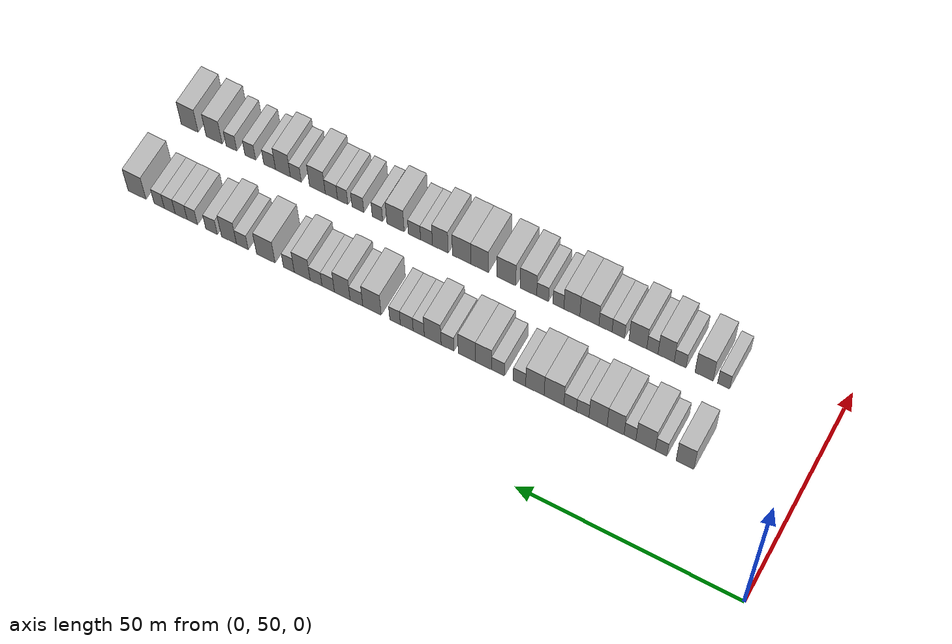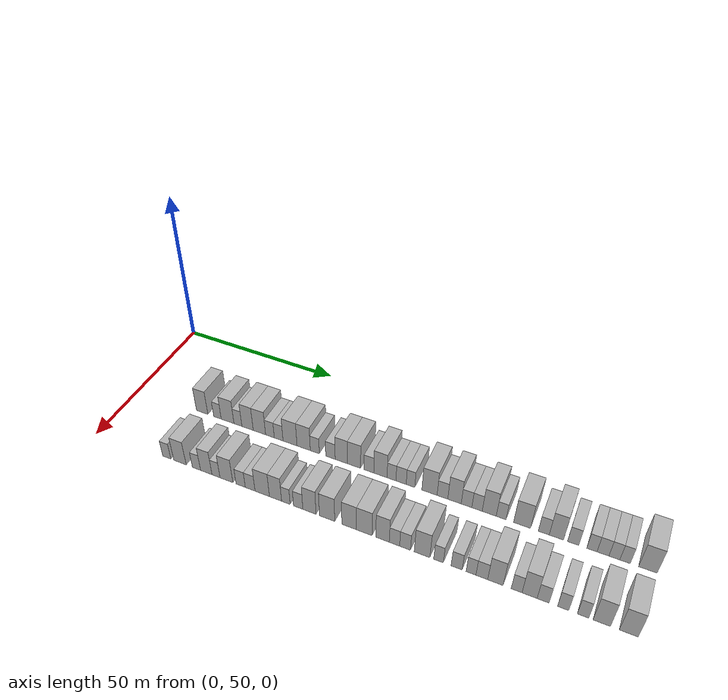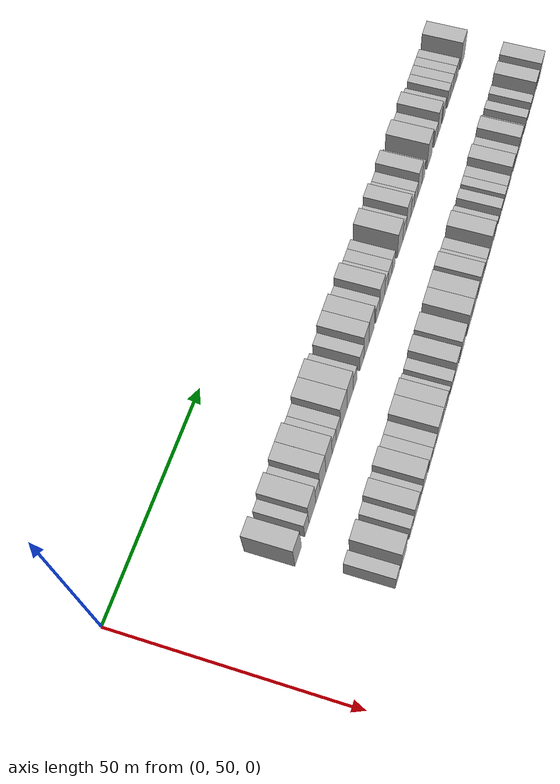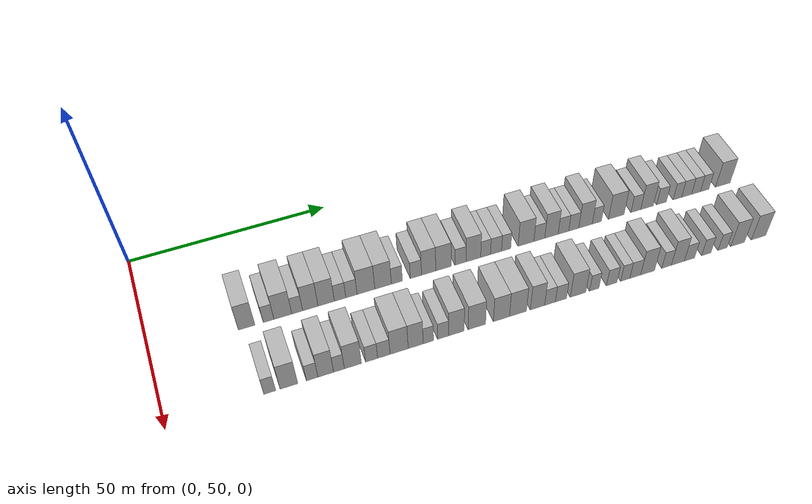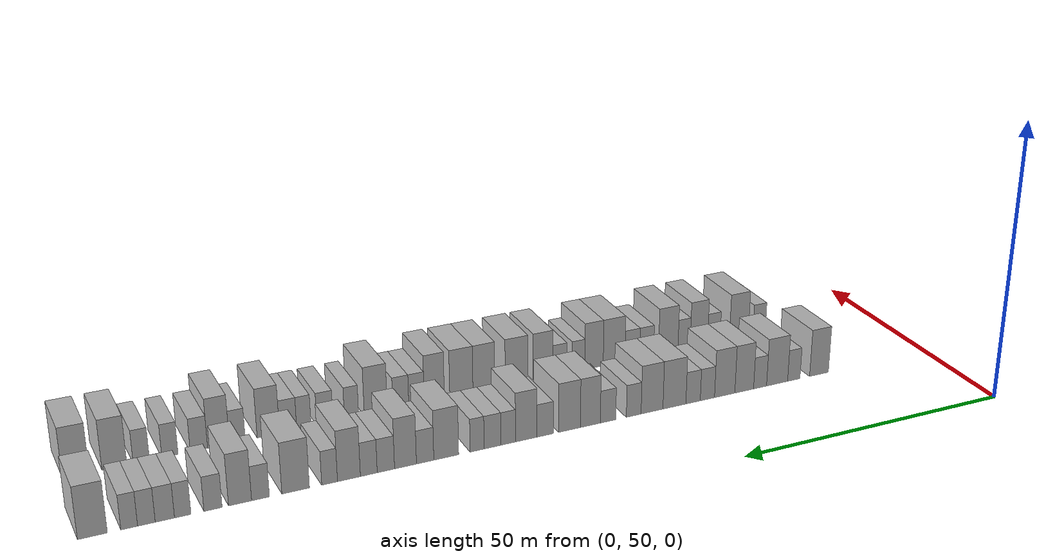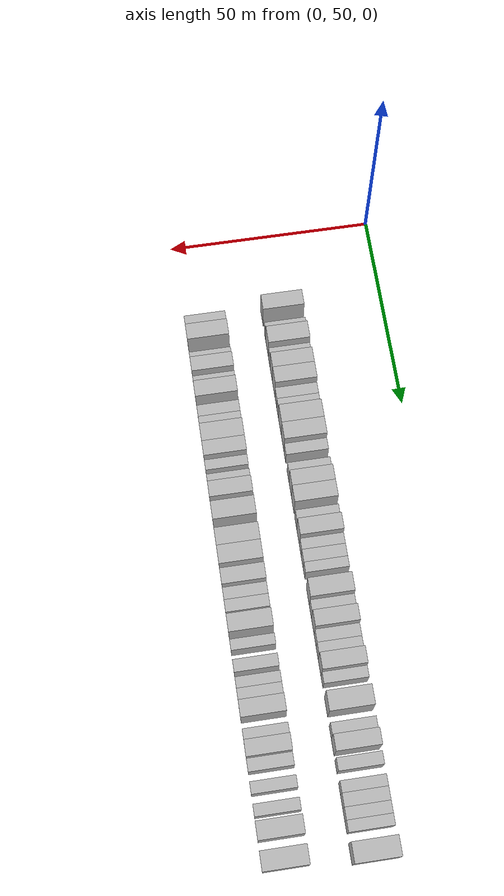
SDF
<sdf version="1.6">
 <world name="default">
  <model name="building_69">
   <static>1</static>
   <pose>25.0000 72.6796 0 0.000000 0.000000 0.000000</pose>
   <link name="link">
    <pose>0 0 4.50 0 0 0</pose>
    <collision name="collision"><geometry><box><size>10.0000 3.9369 9.0000</size></box></geometry></collision>
    <visual name="visual">
     <cast_shadows>0</cast_shadows>
     <geometry><box><size>10.0000 3.9369 9.0000</size></box></geometry>
     <material>
      <script>
       <uri>model://HANNAS_wall/materials/scripts</uri>
       <uri>model://HANNAS_wall/materials/textures</uri>
       <name>vrc/HANNAS_wall</name>
      </script>
     </material>
    </visual>
   </link>
  </model>
  <model name="building_70">
   <static>1</static>
   <pose>25.0000 77.9299 0 0.000000 0.000000 0.000000</pose>
   <link name="link">
    <pose>0 0 3.00 0 0 0</pose>
    <collision name="collision"><geometry><box><size>10.0000 2.5637 6.0000</size></box></geometry></collision>
    <visual name="visual">
     <cast_shadows>0</cast_shadows>
     <geometry><box><size>10.0000 2.5637 6.0000</size></box></geometry>
     <material>
      <script>
       <uri>model://HANNAS_wall/materials/scripts</uri>
       <uri>model://HANNAS_wall/materials/textures</uri>
       <name>vrc/HANNAS_wall</name>
      </script>
     </material>
    </visual>
   </link>
  </model>
  <model name="building_71">
   <static>1</static>
   <pose>25.0000 81.3707 0 0.000000 0.000000 0.000000</pose>
   <link name="link">
    <pose>0 0 4.50 0 0 0</pose>
    <collision name="collision"><geometry><box><size>10.0000 4.3179 9.0000</size></box></geometry></collision>
    <visual name="visual">
     <cast_shadows>0</cast_shadows>
     <geometry><box><size>10.0000 4.3179 9.0000</size></box></geometry>
     <material>
      <script>
       <uri>model://HANNAS_wall/materials/scripts</uri>
       <uri>model://HANNAS_wall/materials/textures</uri>
       <name>vrc/HANNAS_wall</name>
      </script>
     </material>
    </visual>
   </link>
  </model>
  <model name="building_72">
   <static>1</static>
   <pose>25.0000 84.8493 0 0.000000 0.000000 0.000000</pose>
   <link name="link">
    <pose>0 0 3.00 0 0 0</pose>
    <collision name="collision"><geometry><box><size>10.0000 2.6392 6.0000</size></box></geometry></collision>
    <visual name="visual">
     <cast_shadows>0</cast_shadows>
     <geometry><box><size>10.0000 2.6392 6.0000</size></box></geometry>
     <material>
      <script>
       <uri>model://HANNAS_wall/materials/scripts</uri>
       <uri>model://HANNAS_wall/materials/textures</uri>
       <name>vrc/HANNAS_wall</name>
      </script>
     </material>
    </visual>
   </link>
  </model>
  <model name="building_73">
   <static>1</static>
   <pose>25.0000 88.0581 0 0.000000 0.000000 0.000000</pose>
   <link name="link">
    <pose>0 0 4.50 0 0 0</pose>
    <collision name="collision"><geometry><box><size>10.0000 3.7784 9.0000</size></box></geometry></collision>
    <visual name="visual">
     <cast_shadows>0</cast_shadows>
     <geometry><box><size>10.0000 3.7784 9.0000</size></box></geometry>
     <material>
      <script>
       <uri>model://HANNAS_wall/materials/scripts</uri>
       <uri>model://HANNAS_wall/materials/textures</uri>
       <name>vrc/HANNAS_wall</name>
      </script>
     </material>
    </visual>
   </link>
  </model>
  <model name="building_74">
   <static>1</static>
   <pose>25.0000 91.9798 0 0.000000 0.000000 0.000000</pose>
   <link name="link">
    <pose>0 0 4.50 0 0 0</pose>
    <collision name="collision"><geometry><box><size>10.0000 4.0648 9.0000</size></box></geometry></collision>
    <visual name="visual">
     <cast_shadows>0</cast_shadows>
     <geometry><box><size>10.0000 4.0648 9.0000</size></box></geometry>
     <material>
      <script>
       <uri>model://HANNAS_wall/materials/scripts</uri>
       <uri>model://HANNAS_wall/materials/textures</uri>
       <name>vrc/HANNAS_wall</name>
      </script>
     </material>
    </visual>
   </link>
  </model>
  <model name="building_75">
   <static>1</static>
   <pose>25.0000 95.4207 0 0.000000 0.000000 0.000000</pose>
   <link name="link">
    <pose>0 0 3.00 0 0 0</pose>
    <collision name="collision"><geometry><box><size>10.0000 2.8171 6.0000</size></box></geometry></collision>
    <visual name="visual">
     <cast_shadows>0</cast_shadows>
     <geometry><box><size>10.0000 2.8171 6.0000</size></box></geometry>
     <material>
      <script>
       <uri>model://HANNAS_wall/materials/scripts</uri>
       <uri>model://HANNAS_wall/materials/textures</uri>
       <name>vrc/HANNAS_wall</name>
      </script>
     </material>
    </visual>
   </link>
  </model>
  <model name="building_76">
   <static>1</static>
   <pose>25.0000 98.2429 0 0.000000 0.000000 0.000000</pose>
   <link name="link">
    <pose>0 0 3.00 0 0 0</pose>
    <collision name="collision"><geometry><box><size>10.0000 2.8272 6.0000</size></box></geometry></collision>
    <visual name="visual">
     <cast_shadows>0</cast_shadows>
     <geometry><box><size>10.0000 2.8272 6.0000</size></box></geometry>
     <material>
      <script>
       <uri>model://HANNAS_wall/materials/scripts</uri>
       <uri>model://HANNAS_wall/materials/textures</uri>
       <name>vrc/HANNAS_wall</name>
      </script>
     </material>
    </visual>
   </link>
  </model>
  <model name="building_77">
   <static>1</static>
   <pose>25.0000 101.8892 0 0.000000 0.000000 0.000000</pose>
   <link name="link">
    <pose>0 0 4.50 0 0 0</pose>
    <collision name="collision"><geometry><box><size>10.0000 4.4654 9.0000</size></box></geometry></collision>
    <visual name="visual">
     <cast_shadows>0</cast_shadows>
     <geometry><box><size>10.0000 4.4654 9.0000</size></box></geometry>
     <material>
      <script>
       <uri>model://HANNAS_wall/materials/scripts</uri>
       <uri>model://HANNAS_wall/materials/textures</uri>
       <name>vrc/HANNAS_wall</name>
      </script>
     </material>
    </visual>
   </link>
  </model>
  <model name="building_78">
   <static>1</static>
   <pose>25.0000 106.2235 0 0.000000 0.000000 0.000000</pose>
   <link name="link">
    <pose>0 0 4.50 0 0 0</pose>
    <collision name="collision"><geometry><box><size>10.0000 4.2032 9.0000</size></box></geometry></collision>
    <visual name="visual">
     <cast_shadows>0</cast_shadows>
     <geometry><box><size>10.0000 4.2032 9.0000</size></box></geometry>
     <material>
      <script>
       <uri>model://HANNAS_wall/materials/scripts</uri>
       <uri>model://HANNAS_wall/materials/textures</uri>
       <name>vrc/HANNAS_wall</name>
      </script>
     </material>
    </visual>
   </link>
  </model>
  <model name="building_79">
   <static>1</static>
   <pose>25.0000 109.7305 0 0.000000 0.000000 0.000000</pose>
   <link name="link">
    <pose>0 0 3.00 0 0 0</pose>
    <collision name="collision"><geometry><box><size>10.0000 2.8109 6.0000</size></box></geometry></collision>
    <visual name="visual">
     <cast_shadows>0</cast_shadows>
     <geometry><box><size>10.0000 2.8109 6.0000</size></box></geometry>
     <material>
      <script>
       <uri>model://HANNAS_wall/materials/scripts</uri>
       <uri>model://HANNAS_wall/materials/textures</uri>
       <name>vrc/HANNAS_wall</name>
      </script>
     </material>
    </visual>
   </link>
  </model>
  <model name="building_80">
   <static>1</static>
   <pose>25.0000 114.5892 0 0.000000 0.000000 0.000000</pose>
   <link name="link">
    <pose>0 0 3.00 0 0 0</pose>
    <collision name="collision"><geometry><box><size>10.0000 2.9066 6.0000</size></box></geometry></collision>
    <visual name="visual">
     <cast_shadows>0</cast_shadows>
     <geometry><box><size>10.0000 2.9066 6.0000</size></box></geometry>
     <material>
      <script>
       <uri>model://HANNAS_wall/materials/scripts</uri>
       <uri>model://HANNAS_wall/materials/textures</uri>
       <name>vrc/HANNAS_wall</name>
      </script>
     </material>
    </visual>
   </link>
  </model>
  <model name="building_81">
   <static>1</static>
   <pose>25.0000 117.9001 0 0.000000 0.000000 0.000000</pose>
   <link name="link">
    <pose>0 0 4.50 0 0 0</pose>
    <collision name="collision"><geometry><box><size>10.0000 3.7151 9.0000</size></box></geometry></collision>
    <visual name="visual">
     <cast_shadows>0</cast_shadows>
     <geometry><box><size>10.0000 3.7151 9.0000</size></box></geometry>
     <material>
      <script>
       <uri>model://HANNAS_wall/materials/scripts</uri>
       <uri>model://HANNAS_wall/materials/textures</uri>
       <name>vrc/HANNAS_wall</name>
      </script>
     </material>
    </visual>
   </link>
  </model>
  <model name="building_82">
   <static>1</static>
   <pose>25.0000 121.7579 0 0.000000 0.000000 0.000000</pose>
   <link name="link">
    <pose>0 0 4.50 0 0 0</pose>
    <collision name="collision"><geometry><box><size>10.0000 4.0005 9.0000</size></box></geometry></collision>
    <visual name="visual">
     <cast_shadows>0</cast_shadows>
     <geometry><box><size>10.0000 4.0005 9.0000</size></box></geometry>
     <material>
      <script>
       <uri>model://HANNAS_wall/materials/scripts</uri>
       <uri>model://HANNAS_wall/materials/textures</uri>
       <name>vrc/HANNAS_wall</name>
      </script>
     </material>
    </visual>
   </link>
  </model>
  <model name="building_83">
   <static>1</static>
   <pose>25.0000 126.2289 0 0.000000 0.000000 0.000000</pose>
   <link name="link">
    <pose>0 0 3.00 0 0 0</pose>
    <collision name="collision"><geometry><box><size>10.0000 2.9415 6.0000</size></box></geometry></collision>
    <visual name="visual">
     <cast_shadows>0</cast_shadows>
     <geometry><box><size>10.0000 2.9415 6.0000</size></box></geometry>
     <material>
      <script>
       <uri>model://HANNAS_wall/materials/scripts</uri>
       <uri>model://HANNAS_wall/materials/textures</uri>
       <name>vrc/HANNAS_wall</name>
      </script>
     </material>
    </visual>
   </link>
  </model>
  <model name="building_84">
   <static>1</static>
   <pose>25.0000 129.6538 0 0.000000 0.000000 0.000000</pose>
   <link name="link">
    <pose>0 0 4.50 0 0 0</pose>
    <collision name="collision"><geometry><box><size>10.0000 3.9083 9.0000</size></box></geometry></collision>
    <visual name="visual">
     <cast_shadows>0</cast_shadows>
     <geometry><box><size>10.0000 3.9083 9.0000</size></box></geometry>
     <material>
      <script>
       <uri>model://HANNAS_wall/materials/scripts</uri>
       <uri>model://HANNAS_wall/materials/textures</uri>
       <name>vrc/HANNAS_wall</name>
      </script>
     </material>
    </visual>
   </link>
  </model>
  <model name="building_85">
   <static>1</static>
   <pose>25.0000 132.9072 0 0.000000 0.000000 0.000000</pose>
   <link name="link">
    <pose>0 0 3.00 0 0 0</pose>
    <collision name="collision"><geometry><box><size>10.0000 2.5983 6.0000</size></box></geometry></collision>
    <visual name="visual">
     <cast_shadows>0</cast_shadows>
     <geometry><box><size>10.0000 2.5983 6.0000</size></box></geometry>
     <material>
      <script>
       <uri>model://HANNAS_wall/materials/scripts</uri>
       <uri>model://HANNAS_wall/materials/textures</uri>
       <name>vrc/HANNAS_wall</name>
      </script>
     </material>
    </visual>
   </link>
  </model>
  <model name="building_86">
   <static>1</static>
   <pose>25.0000 135.7008 0 0.000000 0.000000 0.000000</pose>
   <link name="link">
    <pose>0 0 3.00 0 0 0</pose>
    <collision name="collision"><geometry><box><size>10.0000 2.9889 6.0000</size></box></geometry></collision>
    <visual name="visual">
     <cast_shadows>0</cast_shadows>
     <geometry><box><size>10.0000 2.9889 6.0000</size></box></geometry>
     <material>
      <script>
       <uri>model://HANNAS_wall/materials/scripts</uri>
       <uri>model://HANNAS_wall/materials/textures</uri>
       <name>vrc/HANNAS_wall</name>
      </script>
     </material>
    </visual>
   </link>
  </model>
  <model name="building_87">
   <static>1</static>
   <pose>25.0000 138.4334 0 0.000000 0.000000 0.000000</pose>
   <link name="link">
    <pose>0 0 3.00 0 0 0</pose>
    <collision name="collision"><geometry><box><size>10.0000 2.4765 6.0000</size></box></geometry></collision>
    <visual name="visual">
     <cast_shadows>0</cast_shadows>
     <geometry><box><size>10.0000 2.4765 6.0000</size></box></geometry>
     <material>
      <script>
       <uri>model://HANNAS_wall/materials/scripts</uri>
       <uri>model://HANNAS_wall/materials/textures</uri>
       <name>vrc/HANNAS_wall</name>
      </script>
     </material>
    </visual>
   </link>
  </model>
  <model name="building_88">
   <static>1</static>
   <pose>25.0000 143.8302 0 0.000000 0.000000 0.000000</pose>
   <link name="link">
    <pose>0 0 4.50 0 0 0</pose>
    <collision name="collision"><geometry><box><size>10.0000 4.3169 9.0000</size></box></geometry></collision>
    <visual name="visual">
     <cast_shadows>0</cast_shadows>
     <geometry><box><size>10.0000 4.3169 9.0000</size></box></geometry>
     <material>
      <script>
       <uri>model://HANNAS_wall/materials/scripts</uri>
       <uri>model://HANNAS_wall/materials/textures</uri>
       <name>vrc/HANNAS_wall</name>
      </script>
     </material>
    </visual>
   </link>
  </model>
  <model name="building_89">
   <static>1</static>
   <pose>25.0000 147.4810 0 0.000000 0.000000 0.000000</pose>
   <link name="link">
    <pose>0 0 3.00 0 0 0</pose>
    <collision name="collision"><geometry><box><size>10.0000 2.9848 6.0000</size></box></geometry></collision>
    <visual name="visual">
     <cast_shadows>0</cast_shadows>
     <geometry><box><size>10.0000 2.9848 6.0000</size></box></geometry>
     <material>
      <script>
       <uri>model://HANNAS_wall/materials/scripts</uri>
       <uri>model://HANNAS_wall/materials/textures</uri>
       <name>vrc/HANNAS_wall</name>
      </script>
     </material>
    </visual>
   </link>
  </model>
  <model name="building_90">
   <static>1</static>
   <pose>25.0000 150.8364 0 0.000000 0.000000 0.000000</pose>
   <link name="link">
    <pose>0 0 4.50 0 0 0</pose>
    <collision name="collision"><geometry><box><size>10.0000 3.7260 9.0000</size></box></geometry></collision>
    <visual name="visual">
     <cast_shadows>0</cast_shadows>
     <geometry><box><size>10.0000 3.7260 9.0000</size></box></geometry>
     <material>
      <script>
       <uri>model://HANNAS_wall/materials/scripts</uri>
       <uri>model://HANNAS_wall/materials/textures</uri>
       <name>vrc/HANNAS_wall</name>
      </script>
     </material>
    </visual>
   </link>
  </model>
  <model name="building_91">
   <static>1</static>
   <pose>25.0000 154.1645 0 0.000000 0.000000 0.000000</pose>
   <link name="link">
    <pose>0 0 3.00 0 0 0</pose>
    <collision name="collision"><geometry><box><size>10.0000 2.9302 6.0000</size></box></geometry></collision>
    <visual name="visual">
     <cast_shadows>0</cast_shadows>
     <geometry><box><size>10.0000 2.9302 6.0000</size></box></geometry>
     <material>
      <script>
       <uri>model://HANNAS_wall/materials/scripts</uri>
       <uri>model://HANNAS_wall/materials/textures</uri>
       <name>vrc/HANNAS_wall</name>
      </script>
     </material>
    </visual>
   </link>
  </model>
  <model name="building_92">
   <static>1</static>
   <pose>25.0000 157.0354 0 0.000000 0.000000 0.000000</pose>
   <link name="link">
    <pose>0 0 3.00 0 0 0</pose>
    <collision name="collision"><geometry><box><size>10.0000 2.8117 6.0000</size></box></geometry></collision>
    <visual name="visual">
     <cast_shadows>0</cast_shadows>
     <geometry><box><size>10.0000 2.8117 6.0000</size></box></geometry>
     <material>
      <script>
       <uri>model://HANNAS_wall/materials/scripts</uri>
       <uri>model://HANNAS_wall/materials/textures</uri>
       <name>vrc/HANNAS_wall</name>
      </script>
     </material>
    </visual>
   </link>
  </model>
  <model name="building_93">
   <static>1</static>
   <pose>25.0000 160.3373 0 0.000000 0.000000 0.000000</pose>
   <link name="link">
    <pose>0 0 4.50 0 0 0</pose>
    <collision name="collision"><geometry><box><size>10.0000 3.7919 9.0000</size></box></geometry></collision>
    <visual name="visual">
     <cast_shadows>0</cast_shadows>
     <geometry><box><size>10.0000 3.7919 9.0000</size></box></geometry>
     <material>
      <script>
       <uri>model://HANNAS_wall/materials/scripts</uri>
       <uri>model://HANNAS_wall/materials/textures</uri>
       <name>vrc/HANNAS_wall</name>
      </script>
     </material>
    </visual>
   </link>
  </model>
  <model name="building_94">
   <static>1</static>
   <pose>25.0000 163.5310 0 0.000000 0.000000 0.000000</pose>
   <link name="link">
    <pose>0 0 3.00 0 0 0</pose>
    <collision name="collision"><geometry><box><size>10.0000 2.5955 6.0000</size></box></geometry></collision>
    <visual name="visual">
     <cast_shadows>0</cast_shadows>
     <geometry><box><size>10.0000 2.5955 6.0000</size></box></geometry>
     <material>
      <script>
       <uri>model://HANNAS_wall/materials/scripts</uri>
       <uri>model://HANNAS_wall/materials/textures</uri>
       <name>vrc/HANNAS_wall</name>
      </script>
     </material>
    </visual>
   </link>
  </model>
  <model name="building_95">
   <static>1</static>
   <pose>25.0000 169.0594 0 0.000000 0.000000 0.000000</pose>
   <link name="link">
    <pose>0 0 4.50 0 0 0</pose>
    <collision name="collision"><geometry><box><size>10.0000 4.4613 9.0000</size></box></geometry></collision>
    <visual name="visual">
     <cast_shadows>0</cast_shadows>
     <geometry><box><size>10.0000 4.4613 9.0000</size></box></geometry>
     <material>
      <script>
       <uri>model://HANNAS_wall/materials/scripts</uri>
       <uri>model://HANNAS_wall/materials/textures</uri>
       <name>vrc/HANNAS_wall</name>
      </script>
     </material>
    </visual>
   </link>
  </model>
  <model name="building_96">
   <static>1</static>
   <pose>25.0000 174.7041 0 0.000000 0.000000 0.000000</pose>
   <link name="link">
    <pose>0 0 3.00 0 0 0</pose>
    <collision name="collision"><geometry><box><size>10.0000 2.8280 6.0000</size></box></geometry></collision>
    <visual name="visual">
     <cast_shadows>0</cast_shadows>
     <geometry><box><size>10.0000 2.8280 6.0000</size></box></geometry>
     <material>
      <script>
       <uri>model://HANNAS_wall/materials/scripts</uri>
       <uri>model://HANNAS_wall/materials/textures</uri>
       <name>vrc/HANNAS_wall</name>
      </script>
     </material>
    </visual>
   </link>
  </model>
  <model name="building_97">
   <static>1</static>
   <pose>25.0000 177.9384 0 0.000000 0.000000 0.000000</pose>
   <link name="link">
    <pose>0 0 4.50 0 0 0</pose>
    <collision name="collision"><geometry><box><size>10.0000 3.6406 9.0000</size></box></geometry></collision>
    <visual name="visual">
     <cast_shadows>0</cast_shadows>
     <geometry><box><size>10.0000 3.6406 9.0000</size></box></geometry>
     <material>
      <script>
       <uri>model://HANNAS_wall/materials/scripts</uri>
       <uri>model://HANNAS_wall/materials/textures</uri>
       <name>vrc/HANNAS_wall</name>
      </script>
     </material>
    </visual>
   </link>
  </model>
  <model name="building_98">
   <static>1</static>
   <pose>25.0000 182.1756 0 0.000000 0.000000 0.000000</pose>
   <link name="link">
    <pose>0 0 3.00 0 0 0</pose>
    <collision name="collision"><geometry><box><size>10.0000 2.8338 6.0000</size></box></geometry></collision>
    <visual name="visual">
     <cast_shadows>0</cast_shadows>
     <geometry><box><size>10.0000 2.8338 6.0000</size></box></geometry>
     <material>
      <script>
       <uri>model://HANNAS_wall/materials/scripts</uri>
       <uri>model://HANNAS_wall/materials/textures</uri>
       <name>vrc/HANNAS_wall</name>
      </script>
     </material>
    </visual>
   </link>
  </model>
  <model name="building_99">
   <static>1</static>
   <pose>25.0000 186.8562 0 0.000000 0.000000 0.000000</pose>
   <link name="link">
    <pose>0 0 3.00 0 0 0</pose>
    <collision name="collision"><geometry><box><size>10.0000 2.5273 6.0000</size></box></geometry></collision>
    <visual name="visual">
     <cast_shadows>0</cast_shadows>
     <geometry><box><size>10.0000 2.5273 6.0000</size></box></geometry>
     <material>
      <script>
       <uri>model://HANNAS_wall/materials/scripts</uri>
       <uri>model://HANNAS_wall/materials/textures</uri>
       <name>vrc/HANNAS_wall</name>
      </script>
     </material>
    </visual>
   </link>
  </model>
  <model name="building_100">
   <static>1</static>
   <pose>25.0000 189.5868 0 0.000000 0.000000 0.000000</pose>
   <link name="link">
    <pose>0 0 3.00 0 0 0</pose>
    <collision name="collision"><geometry><box><size>10.0000 2.9339 6.0000</size></box></geometry></collision>
    <visual name="visual">
     <cast_shadows>0</cast_shadows>
     <geometry><box><size>10.0000 2.9339 6.0000</size></box></geometry>
     <material>
      <script>
       <uri>model://HANNAS_wall/materials/scripts</uri>
       <uri>model://HANNAS_wall/materials/textures</uri>
       <name>vrc/HANNAS_wall</name>
      </script>
     </material>
    </visual>
   </link>
  </model>
  <model name="building_101">
   <static>1</static>
   <pose>25.0000 192.3838 0 0.000000 0.000000 0.000000</pose>
   <link name="link">
    <pose>0 0 3.00 0 0 0</pose>
    <collision name="collision"><geometry><box><size>10.0000 2.6603 6.0000</size></box></geometry></collision>
    <visual name="visual">
     <cast_shadows>0</cast_shadows>
     <geometry><box><size>10.0000 2.6603 6.0000</size></box></geometry>
     <material>
      <script>
       <uri>model://HANNAS_wall/materials/scripts</uri>
       <uri>model://HANNAS_wall/materials/textures</uri>
       <name>vrc/HANNAS_wall</name>
      </script>
     </material>
    </visual>
   </link>
  </model>
  <model name="building_102">
   <static>1</static>
   <pose>25.0000 194.9754 0 0.000000 0.000000 0.000000</pose>
   <link name="link">
    <pose>0 0 3.00 0 0 0</pose>
    <collision name="collision"><geometry><box><size>10.0000 2.5228 6.0000</size></box></geometry></collision>
    <visual name="visual">
     <cast_shadows>0</cast_shadows>
     <geometry><box><size>10.0000 2.5228 6.0000</size></box></geometry>
     <material>
      <script>
       <uri>model://HANNAS_wall/materials/scripts</uri>
       <uri>model://HANNAS_wall/materials/textures</uri>
       <name>vrc/HANNAS_wall</name>
      </script>
     </material>
    </visual>
   </link>
  </model>
  <model name="building_103">
   <static>1</static>
   <pose>25.0000 200.4454 0 0.000000 0.000000 0.000000</pose>
   <link name="link">
    <pose>0 0 4.50 0 0 0</pose>
    <collision name="collision"><geometry><box><size>10.0000 4.4171 9.0000</size></box></geometry></collision>
    <visual name="visual">
     <cast_shadows>0</cast_shadows>
     <geometry><box><size>10.0000 4.4171 9.0000</size></box></geometry>
     <material>
      <script>
       <uri>model://HANNAS_wall/materials/scripts</uri>
       <uri>model://HANNAS_wall/materials/textures</uri>
       <name>vrc/HANNAS_wall</name>
      </script>
     </material>
    </visual>
   </link>
  </model>
  <model name="building_169">
   <static>1</static>
   <pose>44.0000 73.4315 0 0.000000 0.000000 0.000000</pose>
   <link name="link">
    <pose>0 0 3.00 0 0 0</pose>
    <collision name="collision"><geometry><box><size>10.0000 2.6902 6.0000</size></box></geometry></collision>
    <visual name="visual">
     <cast_shadows>0</cast_shadows>
     <geometry><box><size>10.0000 2.6902 6.0000</size></box></geometry>
     <material>
      <script>
       <uri>model://HANNAS_wall/materials/scripts</uri>
       <uri>model://HANNAS_wall/materials/textures</uri>
       <name>vrc/HANNAS_wall</name>
      </script>
     </material>
    </visual>
   </link>
  </model>
  <model name="building_170">
   <static>1</static>
   <pose>44.0000 77.8051 0 0.000000 0.000000 0.000000</pose>
   <link name="link">
    <pose>0 0 4.50 0 0 0</pose>
    <collision name="collision"><geometry><box><size>10.0000 4.0569 9.0000</size></box></geometry></collision>
    <visual name="visual">
     <cast_shadows>0</cast_shadows>
     <geometry><box><size>10.0000 4.0569 9.0000</size></box></geometry>
     <material>
      <script>
       <uri>model://HANNAS_wall/materials/scripts</uri>
       <uri>model://HANNAS_wall/materials/textures</uri>
       <name>vrc/HANNAS_wall</name>
      </script>
     </material>
    </visual>
   </link>
  </model>
  <model name="building_171">
   <static>1</static>
   <pose>44.0000 83.1615 0 0.000000 0.000000 0.000000</pose>
   <link name="link">
    <pose>0 0 3.00 0 0 0</pose>
    <collision name="collision"><geometry><box><size>10.0000 2.6559 6.0000</size></box></geometry></collision>
    <visual name="visual">
     <cast_shadows>0</cast_shadows>
     <geometry><box><size>10.0000 2.6559 6.0000</size></box></geometry>
     <material>
      <script>
       <uri>model://HANNAS_wall/materials/scripts</uri>
       <uri>model://HANNAS_wall/materials/textures</uri>
       <name>vrc/HANNAS_wall</name>
      </script>
     </material>
    </visual>
   </link>
  </model>
  <model name="building_172">
   <static>1</static>
   <pose>44.0000 86.3256 0 0.000000 0.000000 0.000000</pose>
   <link name="link">
    <pose>0 0 4.50 0 0 0</pose>
    <collision name="collision"><geometry><box><size>10.0000 3.6723 9.0000</size></box></geometry></collision>
    <visual name="visual">
     <cast_shadows>0</cast_shadows>
     <geometry><box><size>10.0000 3.6723 9.0000</size></box></geometry>
     <material>
      <script>
       <uri>model://HANNAS_wall/materials/scripts</uri>
       <uri>model://HANNAS_wall/materials/textures</uri>
       <name>vrc/HANNAS_wall</name>
      </script>
     </material>
    </visual>
   </link>
  </model>
  <model name="building_173">
   <static>1</static>
   <pose>44.0000 89.4273 0 0.000000 0.000000 0.000000</pose>
   <link name="link">
    <pose>0 0 3.00 0 0 0</pose>
    <collision name="collision"><geometry><box><size>10.0000 2.5310 6.0000</size></box></geometry></collision>
    <visual name="visual">
     <cast_shadows>0</cast_shadows>
     <geometry><box><size>10.0000 2.5310 6.0000</size></box></geometry>
     <material>
      <script>
       <uri>model://HANNAS_wall/materials/scripts</uri>
       <uri>model://HANNAS_wall/materials/textures</uri>
       <name>vrc/HANNAS_wall</name>
      </script>
     </material>
    </visual>
   </link>
  </model>
  <model name="building_174">
   <static>1</static>
   <pose>44.0000 92.7129 0 0.000000 0.000000 0.000000</pose>
   <link name="link">
    <pose>0 0 4.50 0 0 0</pose>
    <collision name="collision"><geometry><box><size>10.0000 4.0401 9.0000</size></box></geometry></collision>
    <visual name="visual">
     <cast_shadows>0</cast_shadows>
     <geometry><box><size>10.0000 4.0401 9.0000</size></box></geometry>
     <material>
      <script>
       <uri>model://HANNAS_wall/materials/scripts</uri>
       <uri>model://HANNAS_wall/materials/textures</uri>
       <name>vrc/HANNAS_wall</name>
      </script>
     </material>
    </visual>
   </link>
  </model>
  <model name="building_175">
   <static>1</static>
   <pose>44.0000 97.1640 0 0.000000 0.000000 0.000000</pose>
   <link name="link">
    <pose>0 0 3.00 0 0 0</pose>
    <collision name="collision"><geometry><box><size>10.0000 2.8620 6.0000</size></box></geometry></collision>
    <visual name="visual">
     <cast_shadows>0</cast_shadows>
     <geometry><box><size>10.0000 2.8620 6.0000</size></box></geometry>
     <material>
      <script>
       <uri>model://HANNAS_wall/materials/scripts</uri>
       <uri>model://HANNAS_wall/materials/textures</uri>
       <name>vrc/HANNAS_wall</name>
      </script>
     </material>
    </visual>
   </link>
  </model>
  <model name="building_176">
   <static>1</static>
   <pose>44.0000 100.0916 0 0.000000 0.000000 0.000000</pose>
   <link name="link">
    <pose>0 0 3.00 0 0 0</pose>
    <collision name="collision"><geometry><box><size>10.0000 2.9933 6.0000</size></box></geometry></collision>
    <visual name="visual">
     <cast_shadows>0</cast_shadows>
     <geometry><box><size>10.0000 2.9933 6.0000</size></box></geometry>
     <material>
      <script>
       <uri>model://HANNAS_wall/materials/scripts</uri>
       <uri>model://HANNAS_wall/materials/textures</uri>
       <name>vrc/HANNAS_wall</name>
      </script>
     </material>
    </visual>
   </link>
  </model>
  <model name="building_177">
   <static>1</static>
   <pose>44.0000 103.7774 0 0.000000 0.000000 0.000000</pose>
   <link name="link">
    <pose>0 0 4.50 0 0 0</pose>
    <collision name="collision"><geometry><box><size>10.0000 4.3782 9.0000</size></box></geometry></collision>
    <visual name="visual">
     <cast_shadows>0</cast_shadows>
     <geometry><box><size>10.0000 4.3782 9.0000</size></box></geometry>
     <material>
      <script>
       <uri>model://HANNAS_wall/materials/scripts</uri>
       <uri>model://HANNAS_wall/materials/textures</uri>
       <name>vrc/HANNAS_wall</name>
      </script>
     </material>
    </visual>
   </link>
  </model>
  <model name="building_178">
   <static>1</static>
   <pose>44.0000 107.7980 0 0.000000 0.000000 0.000000</pose>
   <link name="link">
    <pose>0 0 4.50 0 0 0</pose>
    <collision name="collision"><geometry><box><size>10.0000 3.6632 9.0000</size></box></geometry></collision>
    <visual name="visual">
     <cast_shadows>0</cast_shadows>
     <geometry><box><size>10.0000 3.6632 9.0000</size></box></geometry>
     <material>
      <script>
       <uri>model://HANNAS_wall/materials/scripts</uri>
       <uri>model://HANNAS_wall/materials/textures</uri>
       <name>vrc/HANNAS_wall</name>
      </script>
     </material>
    </visual>
   </link>
  </model>
  <model name="building_179">
   <static>1</static>
   <pose>44.0000 110.8971 0 0.000000 0.000000 0.000000</pose>
   <link name="link">
    <pose>0 0 3.00 0 0 0</pose>
    <collision name="collision"><geometry><box><size>10.0000 2.5349 6.0000</size></box></geometry></collision>
    <visual name="visual">
     <cast_shadows>0</cast_shadows>
     <geometry><box><size>10.0000 2.5349 6.0000</size></box></geometry>
     <material>
      <script>
       <uri>model://HANNAS_wall/materials/scripts</uri>
       <uri>model://HANNAS_wall/materials/textures</uri>
       <name>vrc/HANNAS_wall</name>
      </script>
     </material>
    </visual>
   </link>
  </model>
  <model name="building_180">
   <static>1</static>
   <pose>44.0000 114.5311 0 0.000000 0.000000 0.000000</pose>
   <link name="link">
    <pose>0 0 3.00 0 0 0</pose>
    <collision name="collision"><geometry><box><size>10.0000 2.7332 6.0000</size></box></geometry></collision>
    <visual name="visual">
     <cast_shadows>0</cast_shadows>
     <geometry><box><size>10.0000 2.7332 6.0000</size></box></geometry>
     <material>
      <script>
       <uri>model://HANNAS_wall/materials/scripts</uri>
       <uri>model://HANNAS_wall/materials/textures</uri>
       <name>vrc/HANNAS_wall</name>
      </script>
     </material>
    </visual>
   </link>
  </model>
  <model name="building_181">
   <static>1</static>
   <pose>44.0000 117.8230 0 0.000000 0.000000 0.000000</pose>
   <link name="link">
    <pose>0 0 4.50 0 0 0</pose>
    <collision name="collision"><geometry><box><size>10.0000 3.8507 9.0000</size></box></geometry></collision>
    <visual name="visual">
     <cast_shadows>0</cast_shadows>
     <geometry><box><size>10.0000 3.8507 9.0000</size></box></geometry>
     <material>
      <script>
       <uri>model://HANNAS_wall/materials/scripts</uri>
       <uri>model://HANNAS_wall/materials/textures</uri>
       <name>vrc/HANNAS_wall</name>
      </script>
     </material>
    </visual>
   </link>
  </model>
  <model name="building_182">
   <static>1</static>
   <pose>44.0000 122.9370 0 0.000000 0.000000 0.000000</pose>
   <link name="link">
    <pose>0 0 4.50 0 0 0</pose>
    <collision name="collision"><geometry><box><size>10.0000 4.3772 9.0000</size></box></geometry></collision>
    <visual name="visual">
     <cast_shadows>0</cast_shadows>
     <geometry><box><size>10.0000 4.3772 9.0000</size></box></geometry>
     <material>
      <script>
       <uri>model://HANNAS_wall/materials/scripts</uri>
       <uri>model://HANNAS_wall/materials/textures</uri>
       <name>vrc/HANNAS_wall</name>
      </script>
     </material>
    </visual>
   </link>
  </model>
  <model name="building_183">
   <static>1</static>
   <pose>44.0000 129.1836 0 0.000000 0.000000 0.000000</pose>
   <link name="link">
    <pose>0 0 4.50 0 0 0</pose>
    <collision name="collision"><geometry><box><size>10.0000 4.1159 9.0000</size></box></geometry></collision>
    <visual name="visual">
     <cast_shadows>0</cast_shadows>
     <geometry><box><size>10.0000 4.1159 9.0000</size></box></geometry>
     <material>
      <script>
       <uri>model://HANNAS_wall/materials/scripts</uri>
       <uri>model://HANNAS_wall/materials/textures</uri>
       <name>vrc/HANNAS_wall</name>
      </script>
     </material>
    </visual>
   </link>
  </model>
  <model name="building_184">
   <static>1</static>
   <pose>44.0000 133.4093 0 0.000000 0.000000 0.000000</pose>
   <link name="link">
    <pose>0 0 4.50 0 0 0</pose>
    <collision name="collision"><geometry><box><size>10.0000 4.3355 9.0000</size></box></geometry></collision>
    <visual name="visual">
     <cast_shadows>0</cast_shadows>
     <geometry><box><size>10.0000 4.3355 9.0000</size></box></geometry>
     <material>
      <script>
       <uri>model://HANNAS_wall/materials/scripts</uri>
       <uri>model://HANNAS_wall/materials/textures</uri>
       <name>vrc/HANNAS_wall</name>
      </script>
     </material>
    </visual>
   </link>
  </model>
  <model name="building_185">
   <static>1</static>
   <pose>44.0000 138.4371 0 0.000000 0.000000 0.000000</pose>
   <link name="link">
    <pose>0 0 4.50 0 0 0</pose>
    <collision name="collision"><geometry><box><size>10.0000 3.7201 9.0000</size></box></geometry></collision>
    <visual name="visual">
     <cast_shadows>0</cast_shadows>
     <geometry><box><size>10.0000 3.7201 9.0000</size></box></geometry>
     <material>
      <script>
       <uri>model://HANNAS_wall/materials/scripts</uri>
       <uri>model://HANNAS_wall/materials/textures</uri>
       <name>vrc/HANNAS_wall</name>
      </script>
     </material>
    </visual>
   </link>
  </model>
  <model name="building_186">
   <static>1</static>
   <pose>44.0000 141.7071 0 0.000000 0.000000 0.000000</pose>
   <link name="link">
    <pose>0 0 3.00 0 0 0</pose>
    <collision name="collision"><geometry><box><size>10.0000 2.8200 6.0000</size></box></geometry></collision>
    <visual name="visual">
     <cast_shadows>0</cast_shadows>
     <geometry><box><size>10.0000 2.8200 6.0000</size></box></geometry>
     <material>
      <script>
       <uri>model://HANNAS_wall/materials/scripts</uri>
       <uri>model://HANNAS_wall/materials/textures</uri>
       <name>vrc/HANNAS_wall</name>
      </script>
     </material>
    </visual>
   </link>
  </model>
  <model name="building_187">
   <static>1</static>
   <pose>44.0000 144.5674 0 0.000000 0.000000 0.000000</pose>
   <link name="link">
    <pose>0 0 3.00 0 0 0</pose>
    <collision name="collision"><geometry><box><size>10.0000 2.9006 6.0000</size></box></geometry></collision>
    <visual name="visual">
     <cast_shadows>0</cast_shadows>
     <geometry><box><size>10.0000 2.9006 6.0000</size></box></geometry>
     <material>
      <script>
       <uri>model://HANNAS_wall/materials/scripts</uri>
       <uri>model://HANNAS_wall/materials/textures</uri>
       <name>vrc/HANNAS_wall</name>
      </script>
     </material>
    </visual>
   </link>
  </model>
  <model name="building_188">
   <static>1</static>
   <pose>44.0000 149.0799 0 0.000000 0.000000 0.000000</pose>
   <link name="link">
    <pose>0 0 4.50 0 0 0</pose>
    <collision name="collision"><geometry><box><size>10.0000 4.1244 9.0000</size></box></geometry></collision>
    <visual name="visual">
     <cast_shadows>0</cast_shadows>
     <geometry><box><size>10.0000 4.1244 9.0000</size></box></geometry>
     <material>
      <script>
       <uri>model://HANNAS_wall/materials/scripts</uri>
       <uri>model://HANNAS_wall/materials/textures</uri>
       <name>vrc/HANNAS_wall</name>
      </script>
     </material>
    </visual>
   </link>
  </model>
  <model name="building_189">
   <static>1</static>
   <pose>44.0000 153.4006 0 0.000000 0.000000 0.000000</pose>
   <link name="link">
    <pose>0 0 3.00 0 0 0</pose>
    <collision name="collision"><geometry><box><size>10.0000 2.5169 6.0000</size></box></geometry></collision>
    <visual name="visual">
     <cast_shadows>0</cast_shadows>
     <geometry><box><size>10.0000 2.5169 6.0000</size></box></geometry>
     <material>
      <script>
       <uri>model://HANNAS_wall/materials/scripts</uri>
       <uri>model://HANNAS_wall/materials/textures</uri>
       <name>vrc/HANNAS_wall</name>
      </script>
     </material>
    </visual>
   </link>
  </model>
  <model name="building_190">
   <static>1</static>
   <pose>44.0000 158.0852 0 0.000000 0.000000 0.000000</pose>
   <link name="link">
    <pose>0 0 3.00 0 0 0</pose>
    <collision name="collision"><geometry><box><size>10.0000 2.8522 6.0000</size></box></geometry></collision>
    <visual name="visual">
     <cast_shadows>0</cast_shadows>
     <geometry><box><size>10.0000 2.8522 6.0000</size></box></geometry>
     <material>
      <script>
       <uri>model://HANNAS_wall/materials/scripts</uri>
       <uri>model://HANNAS_wall/materials/textures</uri>
       <name>vrc/HANNAS_wall</name>
      </script>
     </material>
    </visual>
   </link>
  </model>
  <model name="building_191">
   <static>1</static>
   <pose>44.0000 161.7577 0 0.000000 0.000000 0.000000</pose>
   <link name="link">
    <pose>0 0 3.00 0 0 0</pose>
    <collision name="collision"><geometry><box><size>10.0000 2.4929 6.0000</size></box></geometry></collision>
    <visual name="visual">
     <cast_shadows>0</cast_shadows>
     <geometry><box><size>10.0000 2.4929 6.0000</size></box></geometry>
     <material>
      <script>
       <uri>model://HANNAS_wall/materials/scripts</uri>
       <uri>model://HANNAS_wall/materials/textures</uri>
       <name>vrc/HANNAS_wall</name>
      </script>
     </material>
    </visual>
   </link>
  </model>
  <model name="building_192">
   <static>1</static>
   <pose>44.0000 164.4840 0 0.000000 0.000000 0.000000</pose>
   <link name="link">
    <pose>0 0 3.00 0 0 0</pose>
    <collision name="collision"><geometry><box><size>10.0000 2.9596 6.0000</size></box></geometry></collision>
    <visual name="visual">
     <cast_shadows>0</cast_shadows>
     <geometry><box><size>10.0000 2.9596 6.0000</size></box></geometry>
     <material>
      <script>
       <uri>model://HANNAS_wall/materials/scripts</uri>
       <uri>model://HANNAS_wall/materials/textures</uri>
       <name>vrc/HANNAS_wall</name>
      </script>
     </material>
    </visual>
   </link>
  </model>
  <model name="building_193">
   <static>1</static>
   <pose>44.0000 167.8776 0 0.000000 0.000000 0.000000</pose>
   <link name="link">
    <pose>0 0 4.50 0 0 0</pose>
    <collision name="collision"><geometry><box><size>10.0000 3.8276 9.0000</size></box></geometry></collision>
    <visual name="visual">
     <cast_shadows>0</cast_shadows>
     <geometry><box><size>10.0000 3.8276 9.0000</size></box></geometry>
     <material>
      <script>
       <uri>model://HANNAS_wall/materials/scripts</uri>
       <uri>model://HANNAS_wall/materials/textures</uri>
       <name>vrc/HANNAS_wall</name>
      </script>
     </material>
    </visual>
   </link>
  </model>
  <model name="building_194">
   <static>1</static>
   <pose>44.0000 173.1210 0 0.000000 0.000000 0.000000</pose>
   <link name="link">
    <pose>0 0 3.00 0 0 0</pose>
    <collision name="collision"><geometry><box><size>10.0000 2.6592 6.0000</size></box></geometry></collision>
    <visual name="visual">
     <cast_shadows>0</cast_shadows>
     <geometry><box><size>10.0000 2.6592 6.0000</size></box></geometry>
     <material>
      <script>
       <uri>model://HANNAS_wall/materials/scripts</uri>
       <uri>model://HANNAS_wall/materials/textures</uri>
       <name>vrc/HANNAS_wall</name>
      </script>
     </material>
    </visual>
   </link>
  </model>
  <model name="building_195">
   <static>1</static>
   <pose>44.0000 176.2705 0 0.000000 0.000000 0.000000</pose>
   <link name="link">
    <pose>0 0 4.50 0 0 0</pose>
    <collision name="collision"><geometry><box><size>10.0000 3.6399 9.0000</size></box></geometry></collision>
    <visual name="visual">
     <cast_shadows>0</cast_shadows>
     <geometry><box><size>10.0000 3.6399 9.0000</size></box></geometry>
     <material>
      <script>
       <uri>model://HANNAS_wall/materials/scripts</uri>
       <uri>model://HANNAS_wall/materials/textures</uri>
       <name>vrc/HANNAS_wall</name>
      </script>
     </material>
    </visual>
   </link>
  </model>
  <model name="building_196">
   <static>1</static>
   <pose>44.0000 179.5285 0 0.000000 0.000000 0.000000</pose>
   <link name="link">
    <pose>0 0 3.00 0 0 0</pose>
    <collision name="collision"><geometry><box><size>10.0000 2.8760 6.0000</size></box></geometry></collision>
    <visual name="visual">
     <cast_shadows>0</cast_shadows>
     <geometry><box><size>10.0000 2.8760 6.0000</size></box></geometry>
     <material>
      <script>
       <uri>model://HANNAS_wall/materials/scripts</uri>
       <uri>model://HANNAS_wall/materials/textures</uri>
       <name>vrc/HANNAS_wall</name>
      </script>
     </material>
    </visual>
   </link>
  </model>
  <model name="building_197">
   <static>1</static>
   <pose>44.0000 184.2863 0 0.000000 0.000000 0.000000</pose>
   <link name="link">
    <pose>0 0 3.00 0 0 0</pose>
    <collision name="collision"><geometry><box><size>10.0000 2.6395 6.0000</size></box></geometry></collision>
    <visual name="visual">
     <cast_shadows>0</cast_shadows>
     <geometry><box><size>10.0000 2.6395 6.0000</size></box></geometry>
     <material>
      <script>
       <uri>model://HANNAS_wall/materials/scripts</uri>
       <uri>model://HANNAS_wall/materials/textures</uri>
       <name>vrc/HANNAS_wall</name>
      </script>
     </material>
    </visual>
   </link>
  </model>
  <model name="building_198">
   <static>1</static>
   <pose>44.0000 188.9221 0 0.000000 0.000000 0.000000</pose>
   <link name="link">
    <pose>0 0 3.00 0 0 0</pose>
    <collision name="collision"><geometry><box><size>10.0000 2.6321 6.0000</size></box></geometry></collision>
    <visual name="visual">
     <cast_shadows>0</cast_shadows>
     <geometry><box><size>10.0000 2.6321 6.0000</size></box></geometry>
     <material>
      <script>
       <uri>model://HANNAS_wall/materials/scripts</uri>
       <uri>model://HANNAS_wall/materials/textures</uri>
       <name>vrc/HANNAS_wall</name>
      </script>
     </material>
    </visual>
   </link>
  </model>
  <model name="building_199">
   <static>1</static>
   <pose>44.0000 193.2249 0 0.000000 0.000000 0.000000</pose>
   <link name="link">
    <pose>0 0 4.50 0 0 0</pose>
    <collision name="collision"><geometry><box><size>10.0000 3.9735 9.0000</size></box></geometry></collision>
    <visual name="visual">
     <cast_shadows>0</cast_shadows>
     <geometry><box><size>10.0000 3.9735 9.0000</size></box></geometry>
     <material>
      <script>
       <uri>model://HANNAS_wall/materials/scripts</uri>
       <uri>model://HANNAS_wall/materials/textures</uri>
       <name>vrc/HANNAS_wall</name>
      </script>
     </material>
    </visual>
   </link>
  </model>
  <model name="building_200">
   <static>1</static>
   <pose>44.0000 199.3140 0 0.000000 0.000000 0.000000</pose>
   <link name="link">
    <pose>0 0 4.50 0 0 0</pose>
    <collision name="collision"><geometry><box><size>10.0000 4.2046 9.0000</size></box></geometry></collision>
    <visual name="visual">
     <cast_shadows>0</cast_shadows>
     <geometry><box><size>10.0000 4.2046 9.0000</size></box></geometry>
     <material>
      <script>
       <uri>model://HANNAS_wall/materials/scripts</uri>
       <uri>model://HANNAS_wall/materials/textures</uri>
       <name>vrc/HANNAS_wall</name>
      </script>
     </material>
    </visual>
   </link>
  </model>
 </world>
</sdf>
